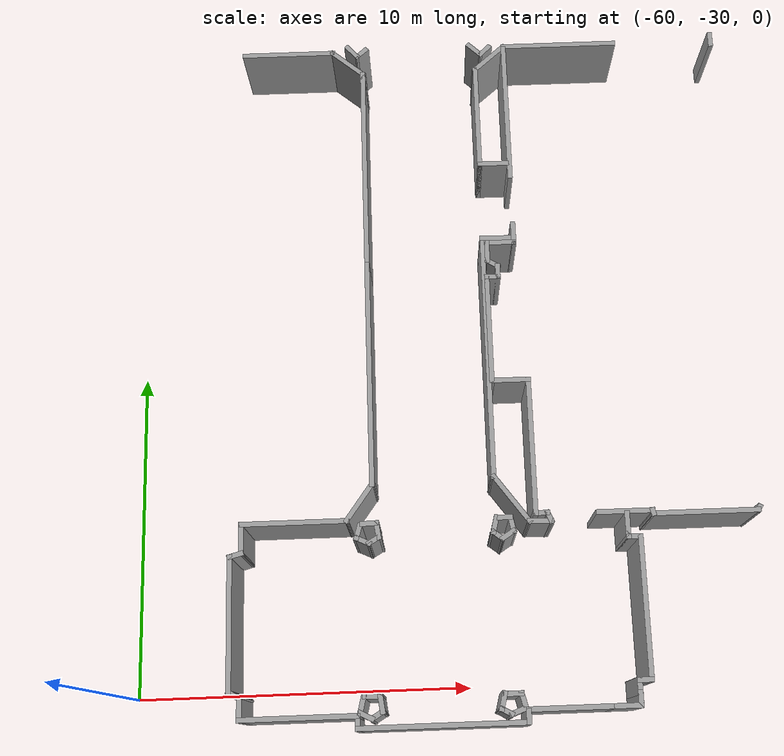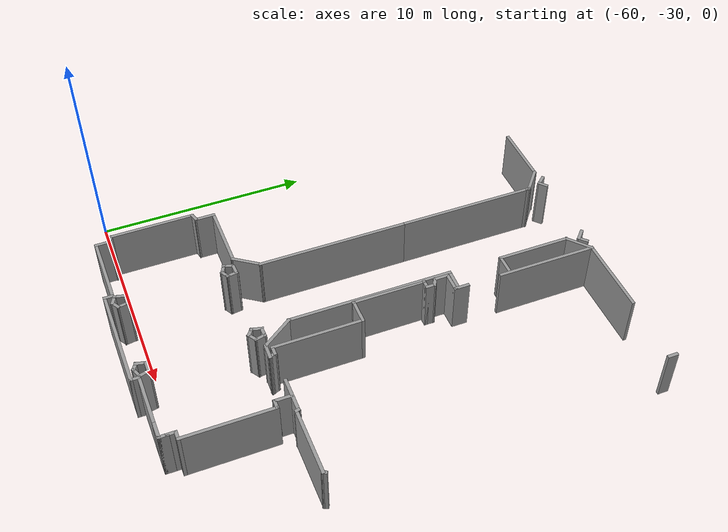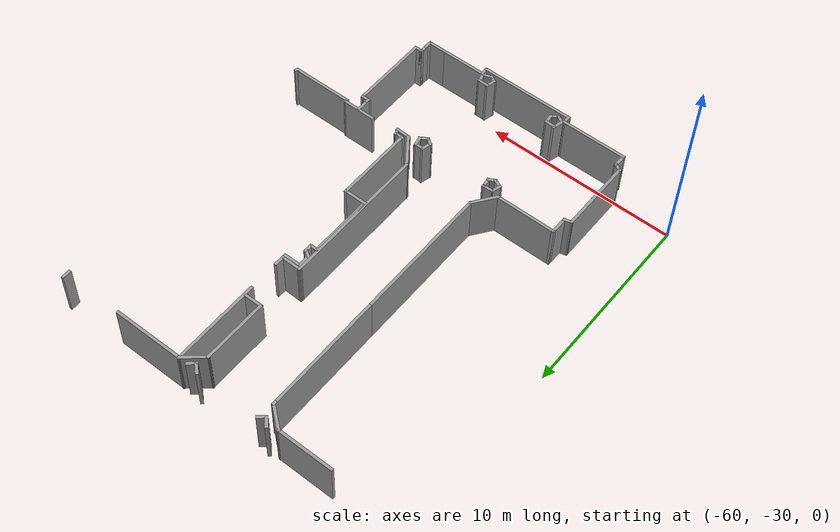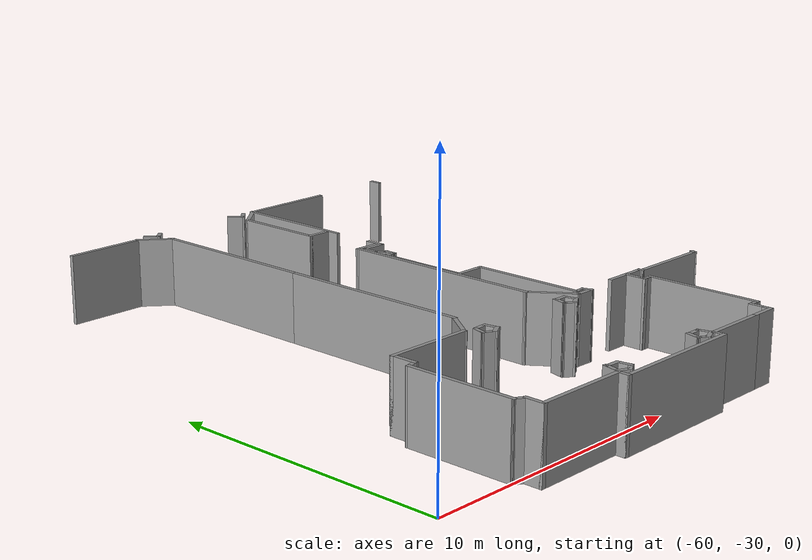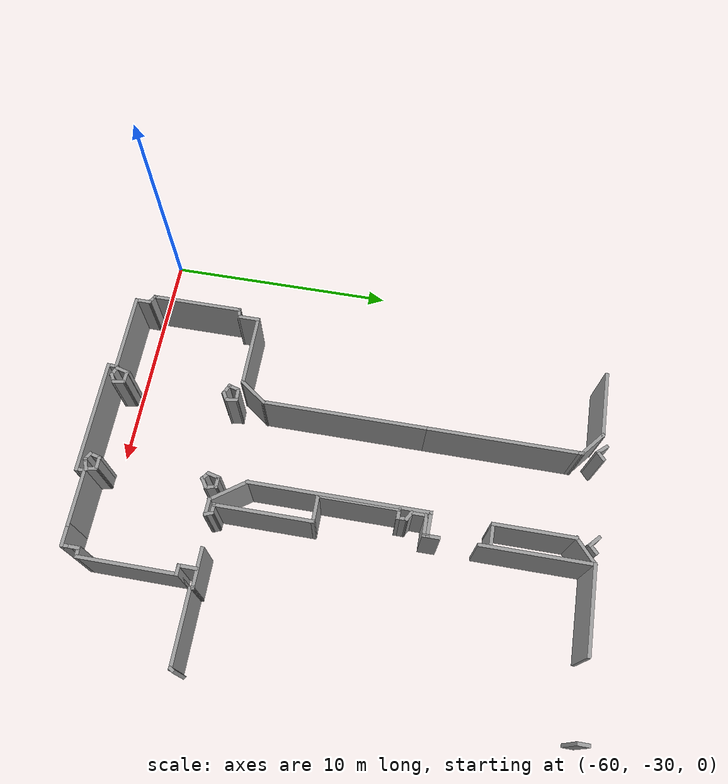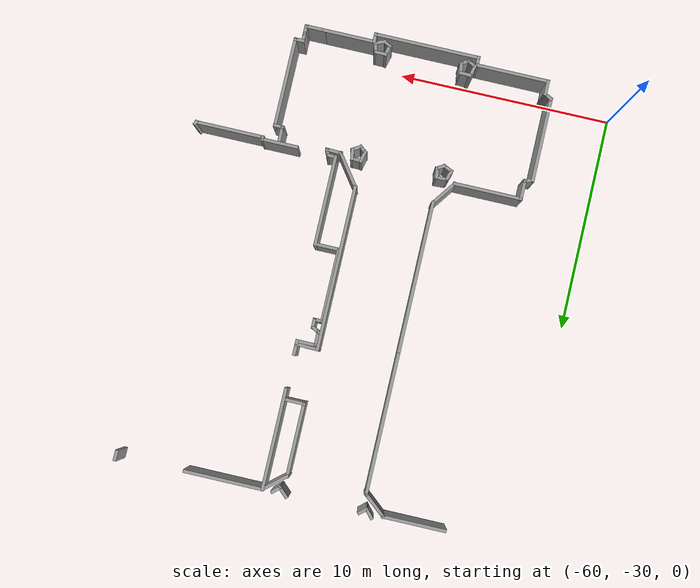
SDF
<sdf version="1.7">
 <model name="TD_n2">
  <pose>-6.42415 -9.1609 0 0 -0 0</pose>
  <link name="Wall_1">
   <collision name="Wall_1_Collision">
    <geometry><box><size>0.5 0.15 2.5</size></box></geometry>
    <pose>0 0 1.25 0 -0 0</pose>
   </collision>
   <visual name="Wall_1_Visual">
    <pose>0 0 1.25 0 -0 0</pose>
    <geometry><box><size>0.5 0.15 2.5</size></box></geometry>
    <material>
     <script><uri>file://media/materials/scripts/gazebo.material</uri><name>Gazebo/Grey</name></script>
     <ambient>1 1 1 1</ambient>
    </material>
    <meta><layer>0</layer></meta>
   </visual>
   <pose>-34.9124 -0.567626 0 0 -0 -1.5708</pose>
  </link>
  <link name="Wall_26">
   <collision name="Wall_26_Collision">
    <geometry><box><size>0.25 0.15 2.5</size></box></geometry>
    <pose>0 0 1.25 0 -0 0</pose>
   </collision>
   <visual name="Wall_26_Visual">
    <pose>0 0 1.25 0 -0 0</pose>
    <geometry><box><size>0.25 0.15 2.5</size></box></geometry>
    <material>
     <script><uri>file://media/materials/scripts/gazebo.material</uri><name>Gazebo/Grey</name></script>
     <ambient>1 1 1 1</ambient>
    </material>
    <meta><layer>0</layer></meta>
   </visual>
   <pose>-34.9062 -16.1028 0 0 -0 -2.0944</pose>
  </link>
  <link name="Wall_27">
   <collision name="Wall_27_Collision">
    <geometry><box><size>3.25 0.15 2.5</size></box></geometry>
    <pose>0 0 1.25 0 -0 0</pose>
   </collision>
   <visual name="Wall_27_Visual">
    <pose>0 0 1.25 0 -0 0</pose>
    <geometry><box><size>3.25 0.15 2.5</size></box></geometry>
    <material>
     <script><uri>file://media/materials/scripts/gazebo.material</uri><name>Gazebo/Grey</name></script>
     <ambient>1 1 1 1</ambient>
    </material>
    <meta><layer>0</layer></meta>
   </visual>
   <pose>-36.4812 -16.1461 0 0 -0 3.14159</pose>
  </link>
  <link name="Wall_28">
   <collision name="Wall_28_Collision">
    <geometry><box><size>0.25 0.15 2.5</size></box></geometry>
    <pose>0 0 1.25 0 -0 0</pose>
   </collision>
   <visual name="Wall_28_Visual">
    <pose>0 0 1.25 0 -0 0</pose>
    <geometry><box><size>0.25 0.15 2.5</size></box></geometry>
    <material>
     <script><uri>file://media/materials/scripts/gazebo.material</uri><name>Gazebo/Grey</name></script>
     <ambient>1 1 1 1</ambient>
    </material>
    <meta><layer>0</layer></meta>
   </visual>
   <pose>-38.0441 -16.0978 0 0 -0 1.8326</pose>
  </link>
  <link name="Wall_29">
   <collision name="Wall_29_Collision">
    <geometry><box><size>1.75 0.15 2.5</size></box></geometry>
    <pose>0 0 1.25 0 -0 0</pose>
   </collision>
   <visual name="Wall_29_Visual">
    <pose>0 0 1.25 0 -0 0</pose>
    <geometry><box><size>1.75 0.15 2.5</size></box></geometry>
    <material>
     <script><uri>file://media/materials/scripts/gazebo.material</uri><name>Gazebo/Grey</name></script>
     <ambient>1 1 1 1</ambient>
    </material>
    <meta><layer>0</layer></meta>
   </visual>
   <pose>-38.8571 -16.0495 0 0 -0 3.14159</pose>
  </link>
  <link name="Wall_31">
   <collision name="Wall_31_Collision">
    <geometry><box><size>0.5 0.15 2.5</size></box></geometry>
    <pose>0 0 1.25 0 -0 0</pose>
   </collision>
   <visual name="Wall_31_Visual">
    <pose>0 0 1.25 0 -0 0</pose>
    <geometry><box><size>0.5 0.15 2.5</size></box></geometry>
    <material>
     <script><uri>file://media/materials/scripts/gazebo.material</uri><name>Gazebo/Grey</name></script>
     <ambient>1 1 1 1</ambient>
    </material>
    <meta><layer>0</layer></meta>
   </visual>
   <pose>-41.3327 -16.0103 0 0 -0 3.14159</pose>
  </link>
  <link name="Wall_32">
   <collision name="Wall_32_Collision">
    <geometry><box><size>4.25 0.15 2.5</size></box></geometry>
    <pose>0 0 1.25 0 -0 0</pose>
   </collision>
   <visual name="Wall_32_Visual">
    <pose>0 0 1.25 0 -0 0</pose>
    <geometry><box><size>4.25 0.15 2.5</size></box></geometry>
    <material>
     <script><uri>file://media/materials/scripts/gazebo.material</uri><name>Gazebo/Grey</name></script>
     <ambient>1 1 1 1</ambient>
    </material>
    <meta><layer>0</layer></meta>
   </visual>
   <pose>-41.5077 -13.9603 0 0 -0 1.5708</pose>
  </link>
  <link name="Wall_33">
   <collision name="Wall_33_Collision">
    <geometry><box><size>1.25 0.15 2.5</size></box></geometry>
    <pose>0 0 1.25 0 -0 0</pose>
   </collision>
   <visual name="Wall_33_Visual">
    <pose>0 0 1.25 0 -0 0</pose>
    <geometry><box><size>1.25 0.15 2.5</size></box></geometry>
    <material>
     <script><uri>file://media/materials/scripts/gazebo.material</uri><name>Gazebo/Grey</name></script>
     <ambient>1 1 1 1</ambient>
    </material>
    <meta><layer>0</layer></meta>
   </visual>
   <pose>-42.0577 -11.9103 0 0 -0 3.14159</pose>
  </link>
  <link name="Wall_34">
   <collision name="Wall_34_Collision">
    <geometry><box><size>3.5 0.15 2.5</size></box></geometry>
    <pose>0 0 1.25 0 -0 0</pose>
   </collision>
   <visual name="Wall_34_Visual">
    <pose>0 0 1.25 0 -0 0</pose>
    <geometry><box><size>3.5 0.15 2.5</size></box></geometry>
    <material>
     <script><uri>file://media/materials/scripts/gazebo.material</uri><name>Gazebo/Grey</name></script>
     <ambient>1 1 1 1</ambient>
    </material>
    <meta><layer>0</layer></meta>
   </visual>
   <pose>-42.6077 -10.2353 0 0 -0 1.5708</pose>
  </link>
  <link name="Wall_35">
   <collision name="Wall_35_Collision">
    <geometry><box><size>0.5 0.15 2.5</size></box></geometry>
    <pose>0 0 1.25 0 -0 0</pose>
   </collision>
   <visual name="Wall_35_Visual">
    <pose>0 0 1.25 0 -0 0</pose>
    <geometry><box><size>0.5 0.15 2.5</size></box></geometry>
    <material>
     <script><uri>file://media/materials/scripts/gazebo.material</uri><name>Gazebo/Grey</name></script>
     <ambient>1 1 1 1</ambient>
    </material>
    <meta><layer>0</layer></meta>
   </visual>
   <pose>-42.4327 -8.56032 0 0 -0 0</pose>
  </link>
  <link name="Wall_36">
   <collision name="Wall_36_Collision">
    <geometry><box><size>0.5 0.15 2.5</size></box></geometry>
    <pose>0 0 1.25 0 -0 0</pose>
   </collision>
   <visual name="Wall_36_Visual">
    <pose>0 0 1.25 0 -0 0</pose>
    <geometry><box><size>0.5 0.15 2.5</size></box></geometry>
    <material>
     <script><uri>file://media/materials/scripts/gazebo.material</uri><name>Gazebo/Grey</name></script>
     <ambient>1 1 1 1</ambient>
    </material>
    <meta><layer>0</layer></meta>
   </visual>
   <pose>-42.2577 -8.38532 0 0 -0 1.5708</pose>
  </link>
  <link name="Wall_37">
   <collision name="Wall_37_Collision">
    <geometry><box><size>0.5 0.15 2.5</size></box></geometry>
    <pose>0 0 1.25 0 -0 0</pose>
   </collision>
   <visual name="Wall_37_Visual">
    <pose>0 0 1.25 0 -0 0</pose>
    <geometry><box><size>0.5 0.15 2.5</size></box></geometry>
    <material>
     <script><uri>file://media/materials/scripts/gazebo.material</uri><name>Gazebo/Grey</name></script>
     <ambient>1 1 1 1</ambient>
    </material>
    <meta><layer>0</layer></meta>
   </visual>
   <pose>-42.4093 -8.12282 0 0 -0 2.61799</pose>
  </link>
  <link name="Wall_38">
   <collision name="Wall_38_Collision">
    <geometry><box><size>0.75 0.15 2.5</size></box></geometry>
    <pose>0 0 1.25 0 -0 0</pose>
   </collision>
   <visual name="Wall_38_Visual">
    <pose>0 0 1.25 0 -0 0</pose>
    <geometry><box><size>0.75 0.15 2.5</size></box></geometry>
    <material>
     <script><uri>file://media/materials/scripts/gazebo.material</uri><name>Gazebo/Grey</name></script>
     <ambient>1 1 1 1</ambient>
    </material>
    <meta><layer>0</layer></meta>
   </visual>
   <pose>-42.5609 -7.73532 0 0 -0 1.5708</pose>
  </link>
  <link name="Wall_39">
   <collision name="Wall_39_Collision">
    <geometry><box><size>1 0.15 2.5</size></box></geometry>
    <pose>0 0 1.25 0 -0 0</pose>
   </collision>
   <visual name="Wall_39_Visual">
    <pose>0 0 1.25 0 -0 0</pose>
    <geometry><box><size>1 0.15 2.5</size></box></geometry>
    <material>
     <script><uri>file://media/materials/scripts/gazebo.material</uri><name>Gazebo/Grey</name></script>
     <ambient>1 1 1 1</ambient>
    </material>
    <meta><layer>0</layer></meta>
   </visual>
   <pose>-42.1359 -7.43532 0 0 -0 0</pose>
  </link>
  <link name="Wall_40">
   <collision name="Wall_40_Collision">
    <geometry><box><size>0.75 0.15 2.5</size></box></geometry>
    <pose>0 0 1.25 0 -0 0</pose>
   </collision>
   <visual name="Wall_40_Visual">
    <pose>0 0 1.25 0 -0 0</pose>
    <geometry><box><size>0.75 0.15 2.5</size></box></geometry>
    <material>
     <script><uri>file://media/materials/scripts/gazebo.material</uri><name>Gazebo/Grey</name></script>
     <ambient>1 1 1 1</ambient>
    </material>
    <meta><layer>0</layer></meta>
   </visual>
   <pose>-41.7109 -7.13532 0 0 -0 1.5708</pose>
  </link>
  <link name="Wall_42">
   <collision name="Wall_42_Collision">
    <geometry><box><size>4.75 0.15 2.5</size></box></geometry>
    <pose>0 0 1.25 0 -0 0</pose>
   </collision>
   <visual name="Wall_42_Visual">
    <pose>0 0 1.25 0 -0 0</pose>
    <geometry><box><size>4.75 0.15 2.5</size></box></geometry>
    <material>
     <script><uri>file://media/materials/scripts/gazebo.material</uri><name>Gazebo/Grey</name></script>
     <ambient>1 1 1 1</ambient>
    </material>
    <meta><layer>0</layer></meta>
   </visual>
   <pose>-41.7094 -2.88521 0 0 -0 1.5708</pose>
  </link>
  <link name="Wall_43">
   <collision name="Wall_43_Collision">
    <geometry><box><size>3.75 0.15 2.5</size></box></geometry>
    <pose>0 0 1.25 0 -0 0</pose>
   </collision>
   <visual name="Wall_43_Visual">
    <pose>0 0 1.25 0 -0 0</pose>
    <geometry><box><size>3.75 0.15 2.5</size></box></geometry>
    <material>
     <script><uri>file://media/materials/scripts/gazebo.material</uri><name>Gazebo/Grey</name></script>
     <ambient>1 1 1 1</ambient>
    </material>
    <meta><layer>0</layer></meta>
   </visual>
   <pose>-39.9094 -0.585206 0 0 -0 0</pose>
  </link>
  <link name="Wall_433">
   <collision name="Wall_433_Collision">
    <geometry><box><size>0.520876 0.15 2.5</size></box></geometry>
    <pose>0 0 1.25 0 -0 0</pose>
   </collision>
   <visual name="Wall_433_Visual">
    <pose>0 0 1.25 0 -0 0</pose>
    <geometry><box><size>0.520876 0.15 2.5</size></box></geometry>
    <material>
     <script><uri>file://media/materials/scripts/gazebo.material</uri><name>Gazebo/Grey</name></script>
     <ambient>1 1 1 1</ambient>
    </material>
    <meta><layer>0</layer></meta>
   </visual>
   <pose>-46.3446 -0.657891 0 0 -0 -2.43297</pose>
  </link>
  <link name="Wall_434">
   <collision name="Wall_434_Collision">
    <geometry><box><size>0.606006 0.15 2.5</size></box></geometry>
    <pose>0 0 1.25 0 -0 0</pose>
   </collision>
   <visual name="Wall_434_Visual">
    <pose>0 0 1.25 0 -0 0</pose>
    <geometry><box><size>0.606006 0.15 2.5</size></box></geometry>
    <material>
     <script><uri>file://media/materials/scripts/gazebo.material</uri><name>Gazebo/Grey</name></script>
     <ambient>1 1 1 1</ambient>
    </material>
    <meta><layer>0</layer></meta>
   </visual>
   <pose>-46.6362 -0.607607 0 0 -0 2.29378</pose>
  </link>
  <link name="Wall_440">
   <collision name="Wall_440_Collision">
    <geometry><box><size>0.534269 0.15 2.5</size></box></geometry>
    <pose>0 0 1.25 0 -0 0</pose>
   </collision>
   <visual name="Wall_440_Visual">
    <pose>0 0 1.25 0 -0 0</pose>
    <geometry><box><size>0.534269 0.15 2.5</size></box></geometry>
    <material>
     <script><uri>file://media/materials/scripts/gazebo.material</uri><name>Gazebo/Grey</name></script>
     <ambient>1 1 1 1</ambient>
    </material>
    <meta><layer>0</layer></meta>
   </visual>
   <pose>-42.3218 -0.708175 0 0 -0 -2.39322</pose>
  </link>
  <link name="Wall_441">
   <collision name="Wall_441_Collision">
    <geometry><box><size>0.647989 0.15 2.5</size></box></geometry>
    <pose>0 0 1.25 0 -0 0</pose>
   </collision>
   <visual name="Wall_441_Visual">
    <pose>0 0 1.25 0 -0 0</pose>
    <geometry><box><size>0.647989 0.15 2.5</size></box></geometry>
    <material>
     <script><uri>file://media/materials/scripts/gazebo.material</uri><name>Gazebo/Grey</name></script>
     <ambient>1 1 1 1</ambient>
    </material>
    <meta><layer>0</layer></meta>
   </visual>
   <pose>-42.6437 -0.667948 0 0 -0 2.38476</pose>
  </link>
  <link name="Wall_445">
   <collision name="Wall_445_Collision">
    <geometry><box><size>0.560918 0.15 2.5</size></box></geometry>
    <pose>0 0 1.25 0 -0 0</pose>
   </collision>
   <visual name="Wall_445_Visual">
    <pose>0 0 1.25 0 -0 0</pose>
    <geometry><box><size>0.560918 0.15 2.5</size></box></geometry>
    <material>
     <script><uri>file://media/materials/scripts/gazebo.material</uri><name>Gazebo/Grey</name></script>
     <ambient>1 1 1 1</ambient>
    </material>
    <meta><layer>0</layer></meta>
   </visual>
   <pose>-46.4198 -16.1405 0 0 -0 0.03702</pose>
  </link>
  <link name="Wall_446">
   <collision name="Wall_446_Collision">
    <geometry><box><size>0.580168 0.15 2.5</size></box></geometry>
    <pose>0 0 1.25 0 -0 0</pose>
   </collision>
   <visual name="Wall_446_Visual">
    <pose>0 0 1.25 0 -0 0</pose>
    <geometry><box><size>0.580168 0.15 2.5</size></box></geometry>
    <material>
     <script><uri>file://media/materials/scripts/gazebo.material</uri><name>Gazebo/Grey</name></script>
     <ambient>1 1 1 1</ambient>
    </material>
    <meta><layer>0</layer></meta>
   </visual>
   <pose>-46.184 -16.3458 0 0 -0 -1.4289</pose>
  </link>
  <link name="Wall_447">
   <collision name="Wall_447_Collision">
    <geometry><box><size>0.4839 0.15 2.5</size></box></geometry>
    <pose>0 0 1.25 0 -0 0</pose>
   </collision>
   <visual name="Wall_447_Visual">
    <pose>0 0 1.25 0 -0 0</pose>
    <geometry><box><size>0.4839 0.15 2.5</size></box></geometry>
    <material>
     <script><uri>file://media/materials/scripts/gazebo.material</uri><name>Gazebo/Grey</name></script>
     <ambient>1 1 1 1</ambient>
    </material>
    <meta><layer>0</layer></meta>
   </visual>
   <pose>-46.2981 -16.6424 0 0 -0 -2.6168</pose>
  </link>
  <link name="Wall_448">
   <collision name="Wall_448_Collision">
    <geometry><box><size>0.551523 0.15 2.5</size></box></geometry>
    <pose>0 0 1.25 0 -0 0</pose>
   </collision>
   <visual name="Wall_448_Visual">
    <pose>0 0 1.25 0 -0 0</pose>
    <geometry><box><size>0.551523 0.15 2.5</size></box></geometry>
    <material>
     <script><uri>file://media/materials/scripts/gazebo.material</uri><name>Gazebo/Grey</name></script>
     <ambient>1 1 1 1</ambient>
    </material>
    <meta><layer>0</layer></meta>
   </visual>
   <pose>-46.6251 -16.6424 0 0 -0 2.71183</pose>
  </link>
  <link name="Wall_449">
   <collision name="Wall_449_Collision">
    <geometry><box><size>0.530219 0.15 2.5</size></box></geometry>
    <pose>0 0 1.25 0 -0 0</pose>
   </collision>
   <visual name="Wall_449_Visual">
    <pose>0 0 1.25 0 -0 0</pose>
    <geometry><box><size>0.530219 0.15 2.5</size></box></geometry>
    <material>
     <script><uri>file://media/materials/scripts/gazebo.material</uri><name>Gazebo/Grey</name></script>
     <ambient>1 1 1 1</ambient>
    </material>
    <meta><layer>0</layer></meta>
   </visual>
   <pose>-46.7544 -16.3762 0 0 -0 1.287</pose>
  </link>
  <link name="Wall_451">
   <collision name="Wall_451_Collision">
    <geometry><box><size>0.484592 0.15 2.5</size></box></geometry>
    <pose>0 0 1.25 0 -0 0</pose>
   </collision>
   <visual name="Wall_451_Visual">
    <pose>0 0 1.25 0 -0 0</pose>
    <geometry><box><size>0.484592 0.15 2.5</size></box></geometry>
    <material>
     <script><uri>file://media/materials/scripts/gazebo.material</uri><name>Gazebo/Grey</name></script>
     <ambient>1 1 1 1</ambient>
    </material>
    <meta><layer>0</layer></meta>
   </visual>
   <pose>-42.4275 -16.1025 0 0 -0 0</pose>
  </link>
  <link name="Wall_452">
   <collision name="Wall_452_Collision">
    <geometry><box><size>0.567618 0.15 2.5</size></box></geometry>
    <pose>0 0 1.25 0 -0 0</pose>
   </collision>
   <visual name="Wall_452_Visual">
    <pose>0 0 1.25 0 -0 0</pose>
    <geometry><box><size>0.567618 0.15 2.5</size></box></geometry>
    <material>
     <script><uri>file://media/materials/scripts/gazebo.material</uri><name>Gazebo/Grey</name></script>
     <ambient>1 1 1 1</ambient>
    </material>
    <meta><layer>0</layer></meta>
   </visual>
   <pose>-42.2222 -16.3078 0 0 -0 -1.38769</pose>
  </link>
  <link name="Wall_453">
   <collision name="Wall_453_Collision">
    <geometry><box><size>0.546596 0.15 2.5</size></box></geometry>
    <pose>0 0 1.25 0 -0 0</pose>
   </collision>
   <visual name="Wall_453_Visual">
    <pose>0 0 1.25 0 -0 0</pose>
    <geometry><box><size>0.546596 0.15 2.5</size></box></geometry>
    <material>
     <script><uri>file://media/materials/scripts/gazebo.material</uri><name>Gazebo/Grey</name></script>
     <ambient>1 1 1 1</ambient>
    </material>
    <meta><layer>0</layer></meta>
   </visual>
   <pose>-42.3514 -16.6196 0 0 -0 -2.57486</pose>
  </link>
  <link name="Wall_454">
   <collision name="Wall_454_Collision">
    <geometry><box><size>0.475481 0.15 2.5</size></box></geometry>
    <pose>0 0 1.25 0 -0 0</pose>
   </collision>
   <visual name="Wall_454_Visual">
    <pose>0 0 1.25 0 -0 0</pose>
    <geometry><box><size>0.475481 0.15 2.5</size></box></geometry>
    <material>
     <script><uri>file://media/materials/scripts/gazebo.material</uri><name>Gazebo/Grey</name></script>
     <ambient>1 1 1 1</ambient>
    </material>
    <meta><layer>0</layer></meta>
   </visual>
   <pose>-42.648 -16.6272 0 0 -0 2.48875</pose>
  </link>
  <link name="Wall_455">
   <collision name="Wall_455_Collision">
    <geometry><box><size>0.603721 0.15 2.5</size></box></geometry>
    <pose>0 0 1.25 0 -0 0</pose>
   </collision>
   <visual name="Wall_455_Visual">
    <pose>0 0 1.25 0 -0 0</pose>
    <geometry><box><size>0.603721 0.15 2.5</size></box></geometry>
    <material>
     <script><uri>file://media/materials/scripts/gazebo.material</uri><name>Gazebo/Grey</name></script>
     <ambient>1 1 1 1</ambient>
    </material>
    <meta><layer>0</layer></meta>
   </visual>
   <pose>-42.7241 -16.3078 0 0 -0 1.33395</pose>
  </link>
  <link name="Wall_457">
   <collision name="Wall_457_Collision">
    <geometry><box><size>0.591316 0.15 2.5</size></box></geometry>
    <pose>0 0 1.25 0 -0 0</pose>
   </collision>
   <visual name="Wall_457_Visual">
    <pose>0 0 1.25 0 -0 0</pose>
    <geometry><box><size>0.591316 0.15 2.5</size></box></geometry>
    <material>
     <script><uri>file://media/materials/scripts/gazebo.material</uri><name>Gazebo/Grey</name></script>
     <ambient>1 1 1 1</ambient>
    </material>
    <meta><layer>0</layer></meta>
   </visual>
   <pose>-46.435 -21.0834 0 0 -0 -0.034469</pose>
  </link>
  <link name="Wall_458">
   <collision name="Wall_458_Collision">
    <geometry><box><size>0.580168 0.15 2.5</size></box></geometry>
    <pose>0 0 1.25 0 -0 0</pose>
   </collision>
   <visual name="Wall_458_Visual">
    <pose>0 0 1.25 0 -0 0</pose>
    <geometry><box><size>0.580168 0.15 2.5</size></box></geometry>
    <material>
     <script><uri>file://media/materials/scripts/gazebo.material</uri><name>Gazebo/Grey</name></script>
     <ambient>1 1 1 1</ambient>
    </material>
    <meta><layer>0</layer></meta>
   </visual>
   <pose>-46.184 -21.3039 0 0 -0 -1.4289</pose>
  </link>
  <link name="Wall_459">
   <collision name="Wall_459_Collision">
    <geometry><box><size>0.504726 0.15 2.5</size></box></geometry>
    <pose>0 0 1.25 0 -0 0</pose>
   </collision>
   <visual name="Wall_459_Visual">
    <pose>0 0 1.25 0 -0 0</pose>
    <geometry><box><size>0.504726 0.15 2.5</size></box></geometry>
    <material>
     <script><uri>file://media/materials/scripts/gazebo.material</uri><name>Gazebo/Grey</name></script>
     <ambient>1 1 1 1</ambient>
    </material>
    <meta><layer>0</layer></meta>
   </visual>
   <pose>-46.3057 -21.6081 0 0 -0 -2.60117</pose>
  </link>
  <link name="Wall_46">
   <collision name="Wall_46_Collision">
    <geometry><box><size>1.39497 0.15 2.5</size></box></geometry>
    <pose>0 0 1.25 0 -0 0</pose>
   </collision>
   <visual name="Wall_46_Visual">
    <pose>0 0 1.25 0 -0 0</pose>
    <geometry><box><size>1.39497 0.15 2.5</size></box></geometry>
    <material>
     <script><uri>file://media/materials/scripts/gazebo.material</uri><name>Gazebo/Grey</name></script>
     <ambient>1 1 1 1</ambient>
    </material>
    <meta><layer>0</layer></meta>
   </visual>
   <pose>-42.1836 -0.988496 0 0 -0 -2.43681</pose>
  </link>
  <link name="Wall_460">
   <collision name="Wall_460_Collision">
    <geometry><box><size>0.524086 0.15 2.5</size></box></geometry>
    <pose>0 0 1.25 0 -0 0</pose>
   </collision>
   <visual name="Wall_460_Visual">
    <pose>0 0 1.25 0 -0 0</pose>
    <geometry><box><size>0.524086 0.15 2.5</size></box></geometry>
    <material>
     <script><uri>file://media/materials/scripts/gazebo.material</uri><name>Gazebo/Grey</name></script>
     <ambient>1 1 1 1</ambient>
    </material>
    <meta><layer>0</layer></meta>
   </visual>
   <pose>-46.6251 -21.6157 0 0 -0 2.67794</pose>
  </link>
  <link name="Wall_461">
   <collision name="Wall_461_Collision">
    <geometry><box><size>0.666426 0.15 2.5</size></box></geometry>
    <pose>0 0 1.25 0 -0 0</pose>
   </collision>
   <visual name="Wall_461_Visual">
    <pose>0 0 1.25 0 -0 0</pose>
    <geometry><box><size>0.666426 0.15 2.5</size></box></geometry>
    <material>
     <script><uri>file://media/materials/scripts/gazebo.material</uri><name>Gazebo/Grey</name></script>
     <ambient>1 1 1 1</ambient>
    </material>
    <meta><layer>0</layer></meta>
   </visual>
   <pose>-46.7316 -21.2811 0 0 -0 1.33296</pose>
  </link>
  <link name="Wall_463">
   <collision name="Wall_463_Collision">
    <geometry><box><size>0.606263 0.15 2.5</size></box></geometry>
    <pose>0 0 1.25 0 -0 0</pose>
   </collision>
   <visual name="Wall_463_Visual">
    <pose>0 0 1.25 0 -0 0</pose>
    <geometry><box><size>0.606263 0.15 2.5</size></box></geometry>
    <material>
     <script><uri>file://media/materials/scripts/gazebo.material</uri><name>Gazebo/Grey</name></script>
     <ambient>1 1 1 1</ambient>
    </material>
    <meta><layer>0</layer></meta>
   </visual>
   <pose>-42.4275 -21.1518 0 0 -0 0</pose>
  </link>
  <link name="Wall_464">
   <collision name="Wall_464_Collision">
    <geometry><box><size>0.574212 0.15 2.5</size></box></geometry>
    <pose>0 0 1.25 0 -0 0</pose>
   </collision>
   <visual name="Wall_464_Visual">
    <pose>0 0 1.25 0 -0 0</pose>
    <geometry><box><size>0.574212 0.15 2.5</size></box></geometry>
    <material>
     <script><uri>file://media/materials/scripts/gazebo.material</uri><name>Gazebo/Grey</name></script>
     <ambient>1 1 1 1</ambient>
    </material>
    <meta><layer>0</layer></meta>
   </visual>
   <pose>-42.1461 -21.3571 0 0 -0 -1.31712</pose>
  </link>
  <link name="Wall_465">
   <collision name="Wall_465_Collision">
    <geometry><box><size>0.587896 0.15 2.5</size></box></geometry>
    <pose>0 0 1.25 0 -0 0</pose>
   </collision>
   <visual name="Wall_465_Visual">
    <pose>0 0 1.25 0 -0 0</pose>
    <geometry><box><size>0.587896 0.15 2.5</size></box></geometry>
    <material>
     <script><uri>file://media/materials/scripts/gazebo.material</uri><name>Gazebo/Grey</name></script>
     <ambient>1 1 1 1</ambient>
    </material>
    <meta><layer>0</layer></meta>
   </visual>
   <pose>-42.2982 -21.6385 0 0 -0 -2.78689</pose>
  </link>
  <link name="Wall_466">
   <collision name="Wall_466_Collision">
    <geometry><box><size>0.463167 0.15 2.5</size></box></geometry>
    <pose>0 0 1.25 0 -0 0</pose>
   </collision>
   <visual name="Wall_466_Visual">
    <pose>0 0 1.25 0 -0 0</pose>
    <geometry><box><size>0.463167 0.15 2.5</size></box></geometry>
    <material>
     <script><uri>file://media/materials/scripts/gazebo.material</uri><name>Gazebo/Grey</name></script>
     <ambient>1 1 1 1</ambient>
    </material>
    <meta><layer>0</layer></meta>
   </visual>
   <pose>-42.6404 -21.6385 0 0 -0 2.63449</pose>
  </link>
  <link name="Wall_467">
   <collision name="Wall_467_Collision">
    <geometry><box><size>0.588951 0.15 2.5</size></box></geometry>
    <pose>0 0 1.25 0 -0 0</pose>
   </collision>
   <visual name="Wall_467_Visual">
    <pose>0 0 1.25 0 -0 0</pose>
    <geometry><box><size>0.588951 0.15 2.5</size></box></geometry>
    <material>
     <script><uri>file://media/materials/scripts/gazebo.material</uri><name>Gazebo/Grey</name></script>
     <ambient>1 1 1 1</ambient>
    </material>
    <meta><layer>0</layer></meta>
   </visual>
   <pose>-42.7241 -21.3495 0 0 -0 1.32582</pose>
  </link>
  <link name="Wall_47">
   <collision name="Wall_47_Collision">
    <geometry><box><size>3.5 0.15 2.5</size></box></geometry>
    <pose>0 0 1.25 0 -0 0</pose>
   </collision>
   <visual name="Wall_47_Visual">
    <pose>0 0 1.25 0 -0 0</pose>
    <geometry><box><size>3.5 0.15 2.5</size></box></geometry>
    <material>
     <script><uri>file://media/materials/scripts/gazebo.material</uri><name>Gazebo/Grey</name></script>
     <ambient>1 1 1 1</ambient>
    </material>
    <meta><layer>0</layer></meta>
   </visual>
   <pose>-42.6578 -3.06679 0 0 -0 -1.5708</pose>
  </link>
  <link name="Wall_48">
   <collision name="Wall_48_Collision">
    <geometry><box><size>1 0.15 2.5</size></box></geometry>
    <pose>0 0 1.25 0 -0 0</pose>
   </collision>
   <visual name="Wall_48_Visual">
    <pose>0 0 1.25 0 -0 0</pose>
    <geometry><box><size>1 0.15 2.5</size></box></geometry>
    <material>
     <script><uri>file://media/materials/scripts/gazebo.material</uri><name>Gazebo/Grey</name></script>
     <ambient>1 1 1 1</ambient>
    </material>
    <meta><layer>0</layer></meta>
   </visual>
   <pose>-42.2328 -4.74179 0 0 -0 0</pose>
  </link>
  <link name="Wall_50">
   <collision name="Wall_50_Collision">
    <geometry><box><size>1.12777 0.15 2.5</size></box></geometry>
    <pose>0 0 1.25 0 -0 0</pose>
   </collision>
   <visual name="Wall_50_Visual">
    <pose>0 0 1.25 0 -0 0</pose>
    <geometry><box><size>1.12777 0.15 2.5</size></box></geometry>
    <material>
     <script><uri>file://media/materials/scripts/gazebo.material</uri><name>Gazebo/Grey</name></script>
     <ambient>1 1 1 1</ambient>
    </material>
    <meta><layer>0</layer></meta>
   </visual>
   <pose>-42.2052 -7.28226 0 0 -0 3.11807</pose>
  </link>
  <link name="Wall_51">
   <collision name="Wall_51_Collision">
    <geometry><box><size>7.75 0.15 2.5</size></box></geometry>
    <pose>0 0 1.25 0 -0 0</pose>
   </collision>
   <visual name="Wall_51_Visual">
    <pose>0 0 1.25 0 -0 0</pose>
    <geometry><box><size>7.75 0.15 2.5</size></box></geometry>
    <material>
     <script><uri>file://media/materials/scripts/gazebo.material</uri><name>Gazebo/Grey</name></script>
     <ambient>1 1 1 1</ambient>
    </material>
    <meta><layer>0</layer></meta>
   </visual>
   <pose>-42.694 -11.0708 0 0 -0 -1.5708</pose>
  </link>
  <link name="Wall_52">
   <collision name="Wall_52_Collision">
    <geometry><box><size>1.84348 0.15 2.5</size></box></geometry>
    <pose>0 0 1.25 0 -0 0</pose>
   </collision>
   <visual name="Wall_52_Visual">
    <pose>0 0 1.25 0 -0 0</pose>
    <geometry><box><size>1.84348 0.15 2.5</size></box></geometry>
    <material>
     <script><uri>file://media/materials/scripts/gazebo.material</uri><name>Gazebo/Grey</name></script>
     <ambient>1 1 1 1</ambient>
    </material>
    <meta><layer>0</layer></meta>
   </visual>
   <pose>-42.1956 -15.5553 0 0 -0 -0.941532</pose>
  </link>
  <link name="Wall_53">
   <collision name="Wall_53_Collision">
    <geometry><box><size>0.791642 0.15 2.5</size></box></geometry>
    <pose>0 0 1.25 0 -0 0</pose>
   </collision>
   <visual name="Wall_53_Visual">
    <pose>0 0 1.25 0 -0 0</pose>
    <geometry><box><size>0.791642 0.15 2.5</size></box></geometry>
    <material>
     <script><uri>file://media/materials/scripts/gazebo.material</uri><name>Gazebo/Grey</name></script>
     <ambient>1 1 1 1</ambient>
    </material>
    <meta><layer>0</layer></meta>
   </visual>
   <pose>-41.3766 -16.2485 0 0 -0 -0.026908</pose>
  </link>
  <link name="Wall_54">
   <collision name="Wall_54_Collision">
    <geometry><box><size>0.417016 0.15 2.5</size></box></geometry>
    <pose>0 0 1.25 0 -0 0</pose>
   </collision>
   <visual name="Wall_54_Visual">
    <pose>0 0 1.25 0 -0 0</pose>
    <geometry><box><size>0.417016 0.15 2.5</size></box></geometry>
    <material>
     <script><uri>file://media/materials/scripts/gazebo.material</uri><name>Gazebo/Grey</name></script>
     <ambient>1 1 1 1</ambient>
    </material>
    <meta><layer>0</layer></meta>
   </visual>
   <pose>-41.1068 -16.1337 0 0 -0 1.96234</pose>
  </link>
  <link name="Wall_56">
   <collision name="Wall_56_Collision">
    <geometry><box><size>0.75 0.15 2.5</size></box></geometry>
    <pose>0 0 1.25 0 -0 0</pose>
   </collision>
   <visual name="Wall_56_Visual">
    <pose>0 0 1.25 0 -0 0</pose>
    <geometry><box><size>0.75 0.15 2.5</size></box></geometry>
    <material>
     <script><uri>file://media/materials/scripts/gazebo.material</uri><name>Gazebo/Grey</name></script>
     <ambient>1 1 1 1</ambient>
    </material>
    <meta><layer>0</layer></meta>
   </visual>
   <pose>-38.8228 -16.4042 0 0 -0 -1.5708</pose>
  </link>
  <link name="Wall_57">
   <collision name="Wall_57_Collision">
    <geometry><box><size>0.25 0.15 2.5</size></box></geometry>
    <pose>0 0 1.25 0 -0 0</pose>
   </collision>
   <visual name="Wall_57_Visual">
    <pose>0 0 1.25 0 -0 0</pose>
    <geometry><box><size>0.25 0.15 2.5</size></box></geometry>
    <material>
     <script><uri>file://media/materials/scripts/gazebo.material</uri><name>Gazebo/Grey</name></script>
     <ambient>1 1 1 1</ambient>
    </material>
    <meta><layer>0</layer></meta>
   </visual>
   <pose>-38.8228 -16.7542 0 0 -0 -1.5708</pose>
  </link>
  <link name="Wall_58">
   <collision name="Wall_58_Collision">
    <geometry><box><size>0.5 0.15 2.5</size></box></geometry>
    <pose>0 0 1.25 0 -0 0</pose>
   </collision>
   <visual name="Wall_58_Visual">
    <pose>0 0 1.25 0 -0 0</pose>
    <geometry><box><size>0.5 0.15 2.5</size></box></geometry>
    <material>
     <script><uri>file://media/materials/scripts/gazebo.material</uri><name>Gazebo/Grey</name></script>
     <ambient>1 1 1 1</ambient>
    </material>
    <meta><layer>0</layer></meta>
   </visual>
   <pose>-38.6478 -16.8042 0 0 -0 0</pose>
  </link>
  <link name="Wall_59">
   <collision name="Wall_59_Collision">
    <geometry><box><size>4.25 0.15 2.5</size></box></geometry>
    <pose>0 0 1.25 0 -0 0</pose>
   </collision>
   <visual name="Wall_59_Visual">
    <pose>0 0 1.25 0 -0 0</pose>
    <geometry><box><size>4.25 0.15 2.5</size></box></geometry>
    <material>
     <script><uri>file://media/materials/scripts/gazebo.material</uri><name>Gazebo/Grey</name></script>
     <ambient>1 1 1 1</ambient>
    </material>
    <meta><layer>0</layer></meta>
   </visual>
   <pose>-38.4728 -18.8542 0 0 -0 -1.5708</pose>
  </link>
  <link name="Wall_60">
   <collision name="Wall_60_Collision">
    <geometry><box><size>0.5 0.15 2.5</size></box></geometry>
    <pose>0 0 1.25 0 -0 0</pose>
   </collision>
   <visual name="Wall_60_Visual">
    <pose>0 0 1.25 0 -0 0</pose>
    <geometry><box><size>0.5 0.15 2.5</size></box></geometry>
    <material>
     <script><uri>file://media/materials/scripts/gazebo.material</uri><name>Gazebo/Grey</name></script>
     <ambient>1 1 1 1</ambient>
    </material>
    <meta><layer>0</layer></meta>
   </visual>
   <pose>-38.6478 -20.9042 0 0 -0 3.14159</pose>
  </link>
  <link name="Wall_61">
   <collision name="Wall_61_Collision">
    <geometry><box><size>0.5 0.15 2.5</size></box></geometry>
    <pose>0 0 1.25 0 -0 0</pose>
   </collision>
   <visual name="Wall_61_Visual">
    <pose>0 0 1.25 0 -0 0</pose>
    <geometry><box><size>0.5 0.15 2.5</size></box></geometry>
    <material>
     <script><uri>file://media/materials/scripts/gazebo.material</uri><name>Gazebo/Grey</name></script>
     <ambient>1 1 1 1</ambient>
    </material>
    <meta><layer>0</layer></meta>
   </visual>
   <pose>-38.8228 -21.0792 0 0 -0 -1.5708</pose>
  </link>
  <link name="Wall_62">
   <collision name="Wall_62_Collision">
    <geometry><box><size>0.5 0.15 2.5</size></box></geometry>
    <pose>0 0 1.25 0 -0 0</pose>
   </collision>
   <visual name="Wall_62_Visual">
    <pose>0 0 1.25 0 -0 0</pose>
    <geometry><box><size>0.5 0.15 2.5</size></box></geometry>
    <material>
     <script><uri>file://media/materials/scripts/gazebo.material</uri><name>Gazebo/Grey</name></script>
     <ambient>1 1 1 1</ambient>
    </material>
    <meta><layer>0</layer></meta>
   </visual>
   <pose>-38.8228 -21.4292 0 0 -0 -1.5708</pose>
  </link>
  <link name="Wall_63">
   <collision name="Wall_63_Collision">
    <geometry><box><size>1 0.15 2.5</size></box></geometry>
    <pose>0 0 1.25 0 -0 0</pose>
   </collision>
   <visual name="Wall_63_Visual">
    <pose>0 0 1.25 0 -0 0</pose>
    <geometry><box><size>1 0.15 2.5</size></box></geometry>
    <material>
     <script><uri>file://media/materials/scripts/gazebo.material</uri><name>Gazebo/Grey</name></script>
     <ambient>1 1 1 1</ambient>
    </material>
    <meta><layer>0</layer></meta>
   </visual>
   <pose>-39.2478 -21.6042 0 0 -0 3.14159</pose>
  </link>
  <link name="Wall_64">
   <collision name="Wall_64_Collision">
    <geometry><box><size>2.5 0.15 2.5</size></box></geometry>
    <pose>0 0 1.25 0 -0 0</pose>
   </collision>
   <visual name="Wall_64_Visual">
    <pose>0 0 1.25 0 -0 0</pose>
    <geometry><box><size>2.5 0.15 2.5</size></box></geometry>
    <material>
     <script><uri>file://media/materials/scripts/gazebo.material</uri><name>Gazebo/Grey</name></script>
     <ambient>1 1 1 1</ambient>
    </material>
    <meta><layer>0</layer></meta>
   </visual>
   <pose>-40.8478 -21.6042 0 0 -0 3.14159</pose>
  </link>
  <link name="Wall_65">
   <collision name="Wall_65_Collision">
    <geometry><box><size>0.5 0.15 2.5</size></box></geometry>
    <pose>0 0 1.25 0 -0 0</pose>
   </collision>
   <visual name="Wall_65_Visual">
    <pose>0 0 1.25 0 -0 0</pose>
    <geometry><box><size>0.5 0.15 2.5</size></box></geometry>
    <material>
     <script><uri>file://media/materials/scripts/gazebo.material</uri><name>Gazebo/Grey</name></script>
     <ambient>1 1 1 1</ambient>
    </material>
    <meta><layer>0</layer></meta>
   </visual>
   <pose>-42.0228 -21.7792 0 0 -0 -1.5708</pose>
  </link>
  <link name="Wall_66">
   <collision name="Wall_66_Collision">
    <geometry><box><size>5 0.15 2.5</size></box></geometry>
    <pose>0 0 1.25 0 -0 0</pose>
   </collision>
   <visual name="Wall_66_Visual">
    <pose>0 0 1.25 0 -0 0</pose>
    <geometry><box><size>5 0.15 2.5</size></box></geometry>
    <material>
     <script><uri>file://media/materials/scripts/gazebo.material</uri><name>Gazebo/Grey</name></script>
     <ambient>1 1 1 1</ambient>
    </material>
    <meta><layer>0</layer></meta>
   </visual>
   <pose>-44.4478 -21.9542 0 0 -0 3.14159</pose>
  </link>
  <link name="Wall_67">
   <collision name="Wall_67_Collision">
    <geometry><box><size>0.5 0.15 2.5</size></box></geometry>
    <pose>0 0 1.25 0 -0 0</pose>
   </collision>
   <visual name="Wall_67_Visual">
    <pose>0 0 1.25 0 -0 0</pose>
    <geometry><box><size>0.5 0.15 2.5</size></box></geometry>
    <material>
     <script><uri>file://media/materials/scripts/gazebo.material</uri><name>Gazebo/Grey</name></script>
     <ambient>1 1 1 1</ambient>
    </material>
    <meta><layer>0</layer></meta>
   </visual>
   <pose>-46.8728 -21.7792 0 0 -0 1.5708</pose>
  </link>
  <link name="Wall_68">
   <collision name="Wall_68_Collision">
    <geometry><box><size>3.5 0.15 2.5</size></box></geometry>
    <pose>0 0 1.25 0 -0 0</pose>
   </collision>
   <visual name="Wall_68_Visual">
    <pose>0 0 1.25 0 -0 0</pose>
    <geometry><box><size>3.5 0.15 2.5</size></box></geometry>
    <material>
     <script><uri>file://media/materials/scripts/gazebo.material</uri><name>Gazebo/Grey</name></script>
     <ambient>1 1 1 1</ambient>
    </material>
    <meta><layer>0</layer></meta>
   </visual>
   <pose>-48.5478 -21.6042 0 0 -0 3.14159</pose>
  </link>
  <link name="Wall_69">
   <collision name="Wall_69_Collision">
    <geometry><box><size>0.75 0.15 2.5</size></box></geometry>
    <pose>0 0 1.25 0 -0 0</pose>
   </collision>
   <visual name="Wall_69_Visual">
    <pose>0 0 1.25 0 -0 0</pose>
    <geometry><box><size>0.75 0.15 2.5</size></box></geometry>
    <material>
     <script><uri>file://media/materials/scripts/gazebo.material</uri><name>Gazebo/Grey</name></script>
     <ambient>1 1 1 1</ambient>
    </material>
    <meta><layer>0</layer></meta>
   </visual>
   <pose>-50.2228 -21.3042 0 0 -0 1.5708</pose>
  </link>
  <link name="Wall_70">
   <collision name="Wall_70_Collision">
    <geometry><box><size>0.5 0.15 2.5</size></box></geometry>
    <pose>0 0 1.25 0 -0 0</pose>
   </collision>
   <visual name="Wall_70_Visual">
    <pose>0 0 1.25 0 -0 0</pose>
    <geometry><box><size>0.5 0.15 2.5</size></box></geometry>
    <material>
     <script><uri>file://media/materials/scripts/gazebo.material</uri><name>Gazebo/Grey</name></script>
     <ambient>1 1 1 1</ambient>
    </material>
    <meta><layer>0</layer></meta>
   </visual>
   <pose>-50.3743 -20.9167 0 0 -0 2.61799</pose>
  </link>
  <link name="Wall_71">
   <collision name="Wall_71_Collision">
    <geometry><box><size>4 0.15 2.5</size></box></geometry>
    <pose>0 0 1.25 0 -0 0</pose>
   </collision>
   <visual name="Wall_71_Visual">
    <pose>0 0 1.25 0 -0 0</pose>
    <geometry><box><size>4 0.15 2.5</size></box></geometry>
    <material>
     <script><uri>file://media/materials/scripts/gazebo.material</uri><name>Gazebo/Grey</name></script>
     <ambient>1 1 1 1</ambient>
    </material>
    <meta><layer>0</layer></meta>
   </visual>
   <pose>-50.5259 -18.9042 0 0 -0 1.5708</pose>
  </link>
  <link name="Wall_72">
   <collision name="Wall_72_Collision">
    <geometry><box><size>0.5 0.15 2.5</size></box></geometry>
    <pose>0 0 1.25 0 -0 0</pose>
   </collision>
   <visual name="Wall_72_Visual">
    <pose>0 0 1.25 0 -0 0</pose>
    <geometry><box><size>0.5 0.15 2.5</size></box></geometry>
    <material>
     <script><uri>file://media/materials/scripts/gazebo.material</uri><name>Gazebo/Grey</name></script>
     <ambient>1 1 1 1</ambient>
    </material>
    <meta><layer>0</layer></meta>
   </visual>
   <pose>-50.3568 -16.9339 0 0 -0 0.261799</pose>
  </link>
  <link name="Wall_73">
   <collision name="Wall_73_Collision">
    <geometry><box><size>1 0.15 2.5</size></box></geometry>
    <pose>0 0 1.25 0 -0 0</pose>
   </collision>
   <visual name="Wall_73_Visual">
    <pose>0 0 1.25 0 -0 0</pose>
    <geometry><box><size>1 0.15 2.5</size></box></geometry>
    <material>
     <script><uri>file://media/materials/scripts/gazebo.material</uri><name>Gazebo/Grey</name></script>
     <ambient>1 1 1 1</ambient>
    </material>
    <meta><layer>0</layer></meta>
   </visual>
   <pose>-50.1878 -16.4636 0 0 -0 1.5708</pose>
  </link>
  <link name="Wall_74">
   <collision name="Wall_74_Collision">
    <geometry><box><size>3.25 0.15 2.5</size></box></geometry>
    <pose>0 0 1.25 0 -0 0</pose>
   </collision>
   <visual name="Wall_74_Visual">
    <pose>0 0 1.25 0 -0 0</pose>
    <geometry><box><size>3.25 0.15 2.5</size></box></geometry>
    <material>
     <script><uri>file://media/materials/scripts/gazebo.material</uri><name>Gazebo/Grey</name></script>
     <ambient>1 1 1 1</ambient>
    </material>
    <meta><layer>0</layer></meta>
   </visual>
   <pose>-48.6378 -16.0386 0 0 -0 0</pose>
  </link>
  <link name="Wall_75">
   <collision name="Wall_75_Collision">
    <geometry><box><size>1.46547 0.15 2.5</size></box></geometry>
    <pose>0 0 1.25 0 -0 0</pose>
   </collision>
   <visual name="Wall_75_Visual">
    <pose>0 0 1.25 0 -0 0</pose>
    <geometry><box><size>1.46547 0.15 2.5</size></box></geometry>
    <material>
     <script><uri>file://media/materials/scripts/gazebo.material</uri><name>Gazebo/Grey</name></script>
     <ambient>1 1 1 1</ambient>
    </material>
    <meta><layer>0</layer></meta>
   </visual>
   <pose>-46.7026 -15.5055 0 0 -0 0.945091</pose>
  </link>
  <link name="Wall_76">
   <collision name="Wall_76_Collision">
    <geometry><box><size>7.25 0.15 2.5</size></box></geometry>
    <pose>0 0 1.25 0 -0 0</pose>
   </collision>
   <visual name="Wall_76_Visual">
    <pose>0 0 1.25 0 -0 0</pose>
    <geometry><box><size>7.25 0.15 2.5</size></box></geometry>
    <material>
     <script><uri>file://media/materials/scripts/gazebo.material</uri><name>Gazebo/Grey</name></script>
     <ambient>1 1 1 1</ambient>
    </material>
    <meta><layer>0</layer></meta>
   </visual>
   <pose>-46.3174 -11.4223 0 0 -0 1.5708</pose>
  </link>
  <link name="Wall_77">
   <collision name="Wall_77_Collision">
    <geometry><box><size>6.5 0.15 2.5</size></box></geometry>
    <pose>0 0 1.25 0 -0 0</pose>
   </collision>
   <visual name="Wall_77_Visual">
    <pose>0 0 1.25 0 -0 0</pose>
    <geometry><box><size>6.5 0.15 2.5</size></box></geometry>
    <material>
     <script><uri>file://media/materials/scripts/gazebo.material</uri><name>Gazebo/Grey</name></script>
     <ambient>1 1 1 1</ambient>
    </material>
    <meta><layer>0</layer></meta>
   </visual>
   <pose>-46.3174 -4.69734 0 0 -0 1.5708</pose>
  </link>
  <link name="Wall_78">
   <collision name="Wall_78_Collision">
    <geometry><box><size>0.25 0.15 2.5</size></box></geometry>
    <pose>0 0 1.25 0 -0 0</pose>
   </collision>
   <visual name="Wall_78_Visual">
    <pose>0 0 1.25 0 -0 0</pose>
    <geometry><box><size>0.25 0.15 2.5</size></box></geometry>
    <material>
     <script><uri>file://media/materials/scripts/gazebo.material</uri><name>Gazebo/Grey</name></script>
     <ambient>1 1 1 1</ambient>
    </material>
    <meta><layer>0</layer></meta>
   </visual>
   <pose>-46.3174 -1.47234 0 0 -0 1.5708</pose>
  </link>
  <link name="Wall_79">
   <collision name="Wall_79_Collision">
    <geometry><box><size>1.40489 0.15 2.5</size></box></geometry>
    <pose>0 0 1.25 0 -0 0</pose>
   </collision>
   <visual name="Wall_79_Visual">
    <pose>0 0 1.25 0 -0 0</pose>
    <geometry><box><size>1.40489 0.15 2.5</size></box></geometry>
    <material>
     <script><uri>file://media/materials/scripts/gazebo.material</uri><name>Gazebo/Grey</name></script>
     <ambient>1 1 1 1</ambient>
    </material>
    <meta><layer>0</layer></meta>
   </visual>
   <pose>-46.8003 -1.02177 0 0 -0 2.44915</pose>
  </link>
  <link name="Wall_80">
   <collision name="Wall_80_Collision">
    <geometry><box><size>3 0.15 2.5</size></box></geometry>
    <pose>0 0 1.25 0 -0 0</pose>
   </collision>
   <visual name="Wall_80_Visual">
    <pose>0 0 1.25 0 -0 0</pose>
    <geometry><box><size>3 0.15 2.5</size></box></geometry>
    <material>
     <script><uri>file://media/materials/scripts/gazebo.material</uri><name>Gazebo/Grey</name></script>
     <ambient>1 1 1 1</ambient>
    </material>
    <meta><layer>0</layer></meta>
   </visual>
   <pose>-48.7082 -0.621193 0 0 -0 3.14159</pose>
  </link>
  <static>1</static>
 </model>
</sdf>
